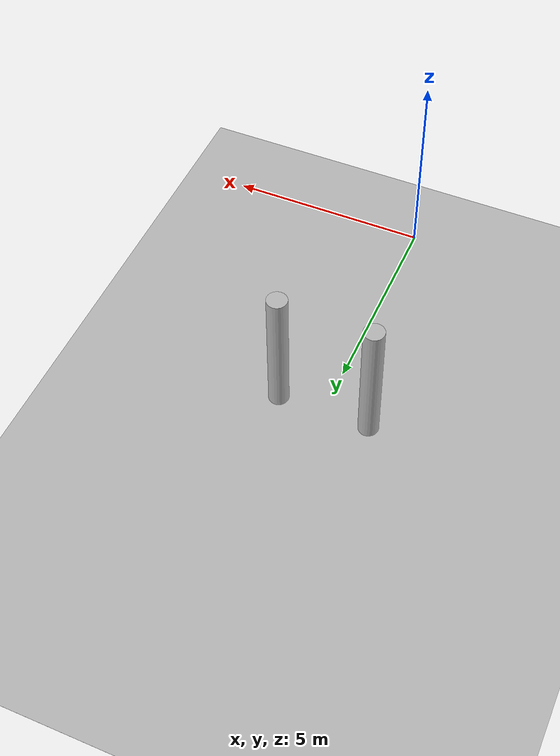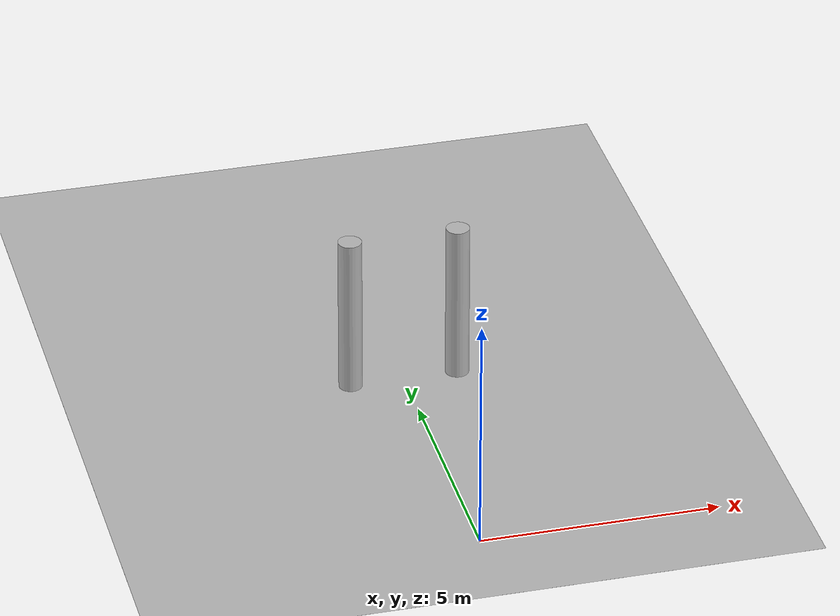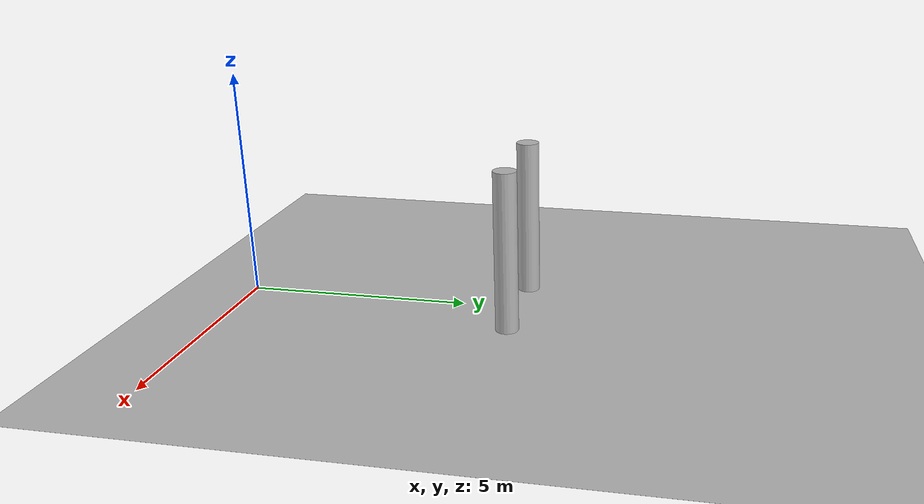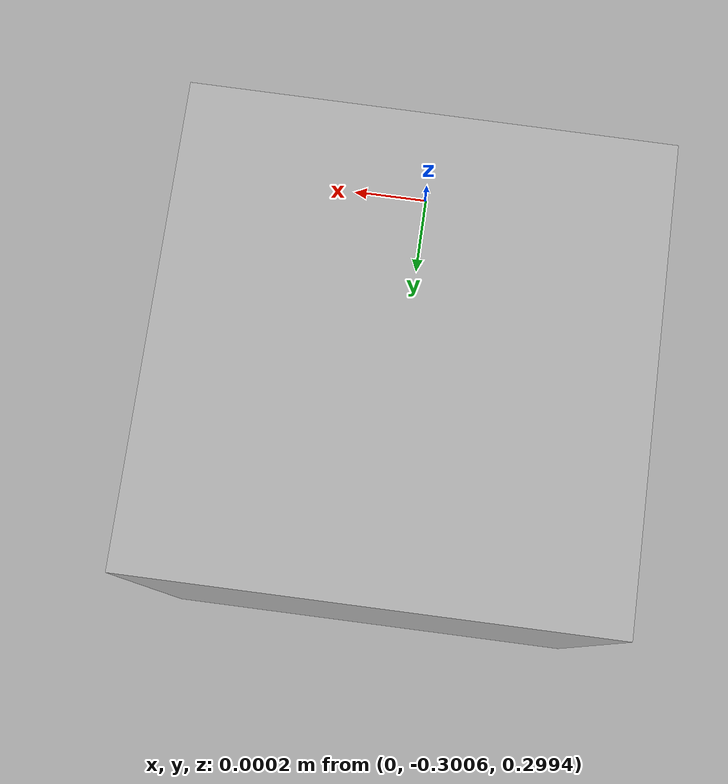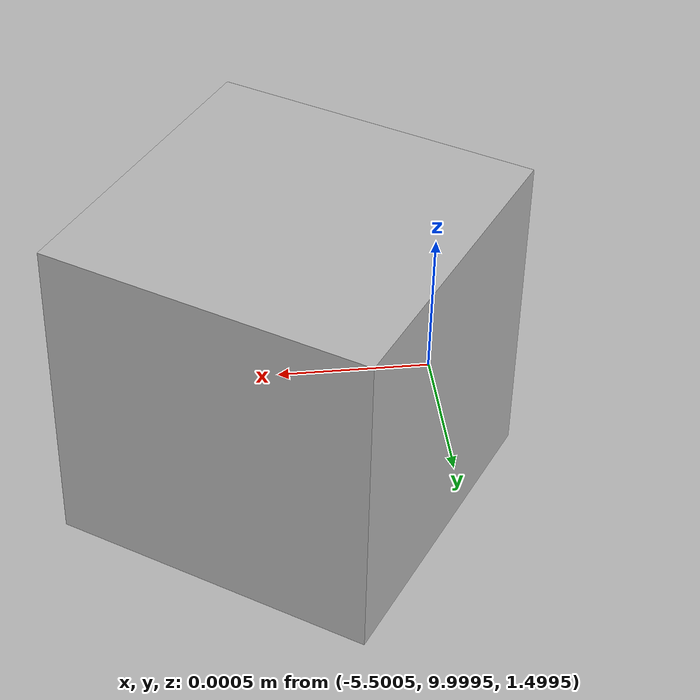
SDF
<?xml version="1.0" ?>
<?xml-model href="http://sdformat.org/schemas/root.xsd" schematypens="http://www.w3.org/2001/XMLSchema"?>
<sdf version="1.4">
  <world name="default">
    <include>
      <uri>model://scale_plane30</uri>
    </include>
    <include>
      <uri>model://sun</uri>
    </include>
    <include>
      <name>cylinder_obstacle0</name>
      <pose>-1.15 6.25 0 0 0 0</pose>
      <uri>model://cylinder_obstacle</uri>
    </include>
    <include>
      <name>cylinder_obstacle1</name>
      <pose>1.15 6.25 0 0 0 0</pose>
      <uri>model://cylinder_obstacle</uri>
    </include>

    <model name="camera1"> <!-- gopro_tu -->
      <pose>-5.5 14 4.5 0 0.43 -0.82</pose>
    <link name="link">
      <gravity>0</gravity>
      <pose>0 0 0 0 0 0</pose>
      <inertial>
        <mass>0.1</mass>
      </inertial>
      <collision name="collision">
        <geometry>
          <box>
            <size>0.001 0.001 0.001</size>
          </box>
        </geometry>
      </collision>
      <visual name="visual">
        <geometry>
          <box>
            <size>0.001 0.001 0.001</size>
          </box>
        </geometry>
      </visual>
      <sensor name="camera1" type="camera">
        <camera>
          <horizontal_fov>1.35</horizontal_fov>
          <image>
            <width>1720</width>
            <height>1080</height>
          </image>
          <clip>
            <near>0.1</near>
            <far>100</far>
          </clip>
          <save enabled="true">
            <path>/tmp/cam1</path>
          </save>
        </camera>
        <always_on>1</always_on>
        <update_rate>15</update_rate>
        <visualize>true</visualize>
      </sensor>
    </link>
    </model>

    <model name="camera2"> <!-- gopro_cb -->
      <pose>5 6.25 5 0 0.45 3.141592</pose>
    <link name="link">
      <gravity>0</gravity>
      <pose>0 0 0 0 0 0</pose>
      <inertial>
        <mass>0.1</mass>
      </inertial>
      <collision name="collision">
        <geometry>
          <box>
            <size>0.001 0.001 0.001</size>
          </box>
        </geometry>
      </collision>
      <visual name="visual">
        <geometry>
          <box>
            <size>0.001 0.001 0.001</size>
          </box>
        </geometry>
      </visual>
      <sensor name="camera2" type="camera">
        <camera>
          <horizontal_fov>1.35</horizontal_fov>
          <image>
            <width>1720</width>
            <height>1080</height>
          </image>
          <clip>
            <near>0.1</near>
            <far>100</far>
          </clip>
          <save enabled="true">
            <path>/tmp/cam2</path>
          </save>
        </camera>
        <always_on>1</always_on>
        <update_rate>15</update_rate>
        <visualize>true</visualize>
      </sensor>
    </link>
    </model>

    <model name="camera3"> <!-- rpi_1 -->
      <pose>0 -0.3 0.3 0 -0.15 1.570796</pose>
    <link name="link">
      <gravity>0</gravity>
      <pose>0 0 0 0 0 0</pose>
      <inertial>
        <mass>0.1</mass>
      </inertial>
      <collision name="collision">
        <geometry>
          <box>
            <size>0.001 0.001 0.001</size>
          </box>
        </geometry>
      </collision>
      <visual name="visual">
        <geometry>
          <box>
            <size>0.001 0.001 0.001</size>
          </box>
        </geometry>
      </visual>
      <sensor name="camera3" type="camera">
        <camera>
          <horizontal_fov>1.047</horizontal_fov>
          <image>
            <width>1720</width>
            <height>1080</height>
          </image>
          <clip>
            <near>0.1</near>
            <far>100</far>
          </clip>
          <save enabled="true">
            <path>/tmp/cam3</path>
          </save>
        </camera>
        <always_on>1</always_on>
        <update_rate>15</update_rate>
        <visualize>true</visualize>
      </sensor>
    </link>
    </model>

    <model name="camera4"> <!-- rpi_2 -->
      <pose>-5.5 10 1.5 0 0 -0.6</pose>
    <link name="link">
      <gravity>0</gravity>
      <pose>0 0 0 0 0 0</pose>
      <inertial>
        <mass>0.1</mass>
      </inertial>
      <collision name="collision">
        <geometry>
          <box>
            <size>0.001 0.001 0.001</size>
          </box>
        </geometry>
      </collision>
      <visual name="visual">
        <geometry>
          <box>
            <size>0.001 0.001 0.001</size>
          </box>
        </geometry>
      </visual>
      <sensor name="camera4" type="camera">
        <camera>
          <horizontal_fov>1.15</horizontal_fov>
          <image>
            <width>1720</width>
            <height>1080</height>
          </image>
          <clip>
            <near>0.1</near>
            <far>100</far>
          </clip>
          <save enabled="true">
            <path>/tmp/cam4</path>
          </save>
        </camera>
        <always_on>1</always_on>
        <update_rate>15</update_rate>
        <visualize>true</visualize>
      </sensor>
    </link>
    </model>

    <!-- Only one ROS interface plugin is required per world, as any other plugin can connect a Gazebo
         topic to a ROS topic (or vise versa). -->
    <plugin name="ros_interface_plugin" filename="librotors_gazebo_ros_interface_plugin.so"/>

    <!-- coordinate system {-->
    <spherical_coordinates>
      <surface_model>EARTH_WGS84</surface_model>
      <latitude_deg>47.3667</latitude_deg>
      <longitude_deg>8.5500</longitude_deg>
      <elevation>500.0</elevation>
      <heading_deg>0</heading_deg>
    </spherical_coordinates>

    <!-- physics engine {-->
    <physics name="default_physics" default="0"  type='ode'>
      <ode>
        <solver>
          <type>quick</type>
          <iters>1000</iters>
          <sor>1.3</sor>
        </solver>
        <constraints>
          <cfm>0</cfm>
          <erp>0.2</erp>
          <contact_max_correcting_vel>100</contact_max_correcting_vel>
          <contact_surface_layer>0.001</contact_surface_layer>
        </constraints>
      </ode>
      <max_step_size>0.001</max_step_size>
      <real_time_factor>1</real_time_factor>
      <real_time_update_rate>1000</real_time_update_rate>
      <magnetic_field>6.0e-06 2.3e-05 -4.2e-05</magnetic_field>
      <gravity>0 0 -9.8</gravity>
    </physics>

    <!-- turn off shadows {-->
    <scene>
      <shadows>false</shadows>
    </scene>

  </world>
</sdf>

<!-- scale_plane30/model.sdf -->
<sdf version="1.5">
  <model name="scale_plane30">
    <static>true</static>
    <link name="link">
      <collision name="collision">
        <geometry>
          <box>
            <size>60 60 .001</size>
          </box>
        </geometry>
      </collision>
      <visual name="visual">
        <cast_shadows>false</cast_shadows>
        <geometry>
          <box>
            <size>60 60 .001</size>
          </box>
        </geometry>
        <material>
          <script>
            <uri>model://scale_plane30/materials/scripts</uri>
            <uri>model://scale_plane30/materials/textures</uri>
            <name>vrc/scale</name>
          </script>
        </material>
      </visual>
    </link>
  </model>
</sdf>

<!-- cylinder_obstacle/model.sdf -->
<sdf version="1.5">
  <model name="cylinder_obstacle">
    <static>true</static>
    <link name="link">
      <collision name="collision">
        <geometry>
          <cylinder>
            <radius>0.25</radius>
            <length>7</length>
          </cylinder>
        </geometry>
      </collision>
      <visual name="visual">
        <cast_shadows>false</cast_shadows>
        <geometry>
          <cylinder>
            <radius>0.25</radius>
            <length>7</length>
          </cylinder>
        </geometry>
        <material>
          <script>
            <uri>model://cylinder_obstacle/materials/scripts</uri>
            <uri>model://cylinder_obstacle/materials/textures</uri>
            <name>vrc/obstacle</name>
          </script>
        </material>
      </visual>
    </link>
  </model>
</sdf>
